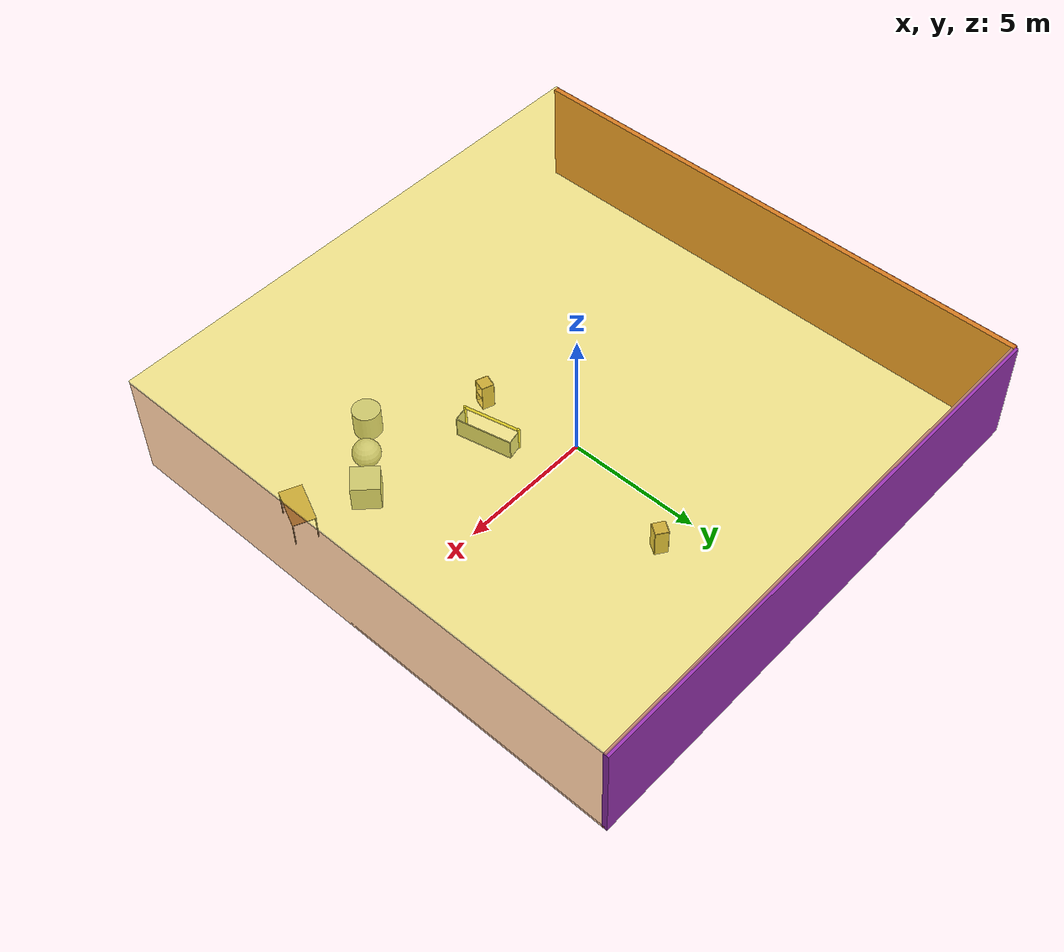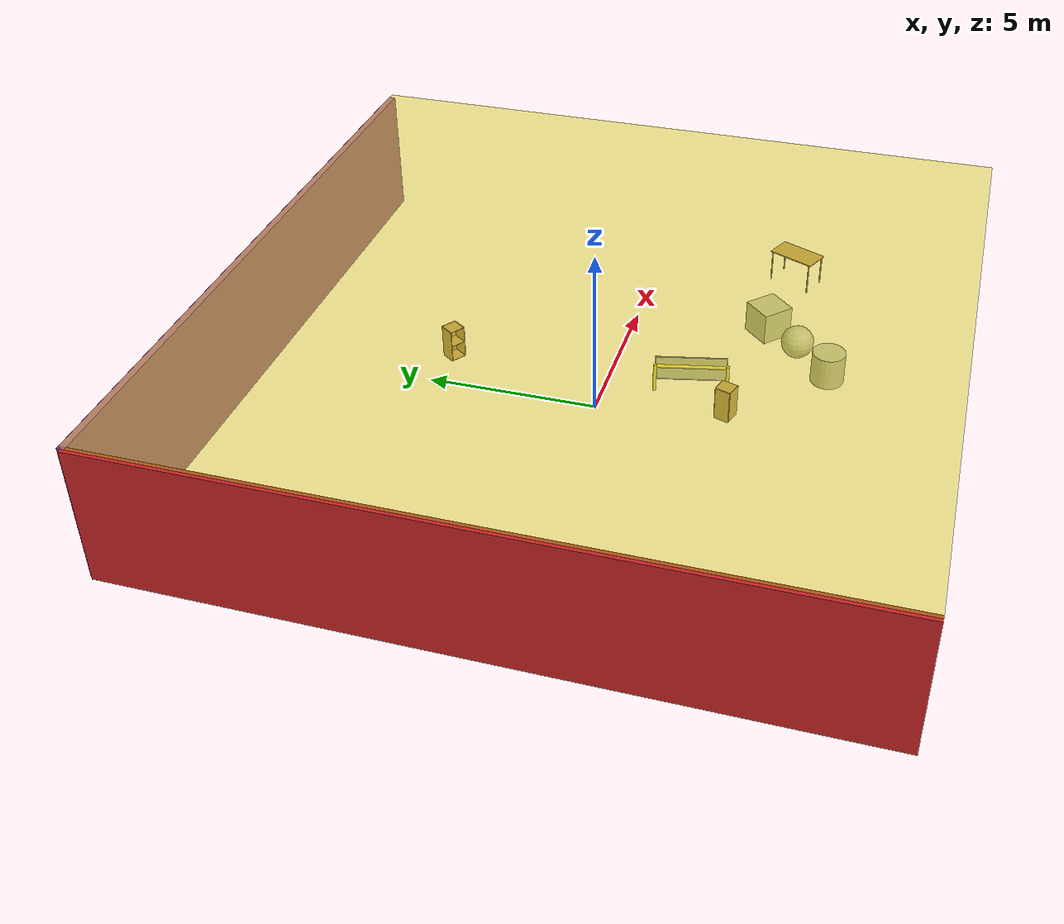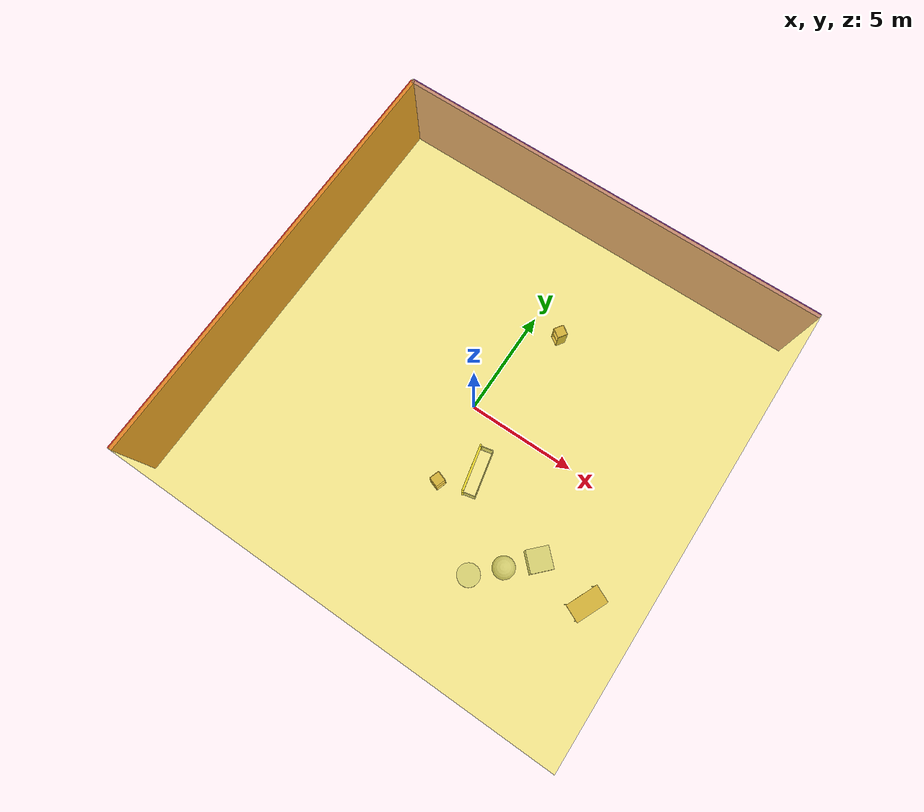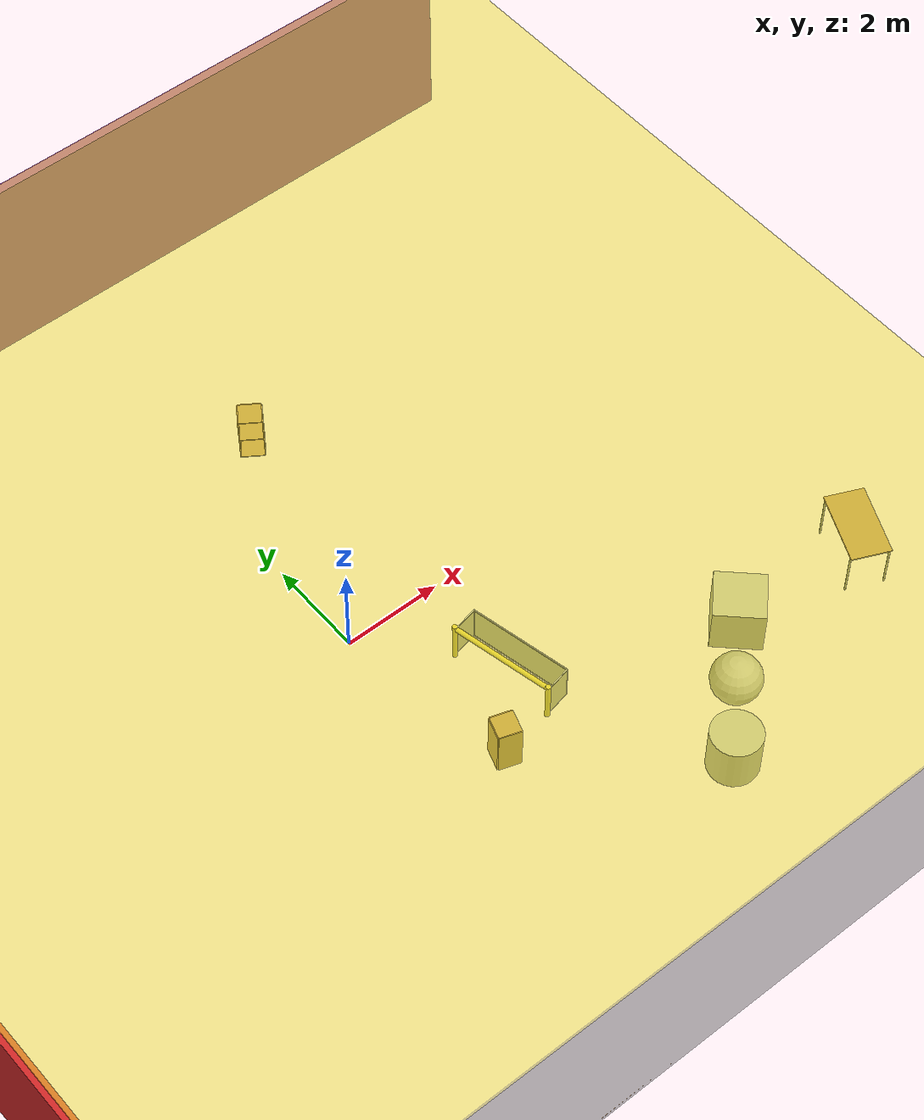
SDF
<sdf version="1.4">
 <world name="default">
  <physics type="ode">
   <max_step_size>0.001</max_step_size>
   <real_time_factor>1</real_time_factor>
   <real_time_update_rate>1000</real_time_update_rate>
   <gravity>0 0 -9.8</gravity>
  </physics>
  <scene><ambient>0.4 0.4 0.4 1</ambient><background>0.7 0.7 0.7 1</background><shadows>1</shadows></scene>
  <model name="Surrounding">
   <static>1</static>
   <link name="Ceiling">
    <collision name="Ceiling_Collision"><geometry><box><size>20 20 0.1</size></box></geometry></collision>
    <visual name="Ceiling_Visual">
     <geometry><box><size>20 20 0.1</size></box></geometry>
     <material>
      <script>
       <uri>file://media/materials/scripts/gazebo.material</uri>
       <name>Gazebo/YellowTransparent</name>
      </script>
     </material>
    </visual>
    <pose>0 0 4.05 0 0 0</pose>
   </link>
   <link name="Wall_South">
    <collision name="Wall_South_Collision">
     <geometry><box><size>20 0 4</size></box></geometry>
     <pose>0 0 2 0 -0 0</pose>
    </collision>
    <visual name="Wall_South_Visual">
     <pose>0 0 2 0 -0 0</pose>
     <geometry><box><size>20 0 4</size></box></geometry>
     <material>
      <script><uri>file://media/materials/scripts/gazebo.material</uri><name>Gazebo/GreyTransparent</name></script>
     </material>
    </visual>
    <velocity_decay><linear>0</linear><angular>0</angular></velocity_decay>
    <pose>0 -10 0 0 -0 0</pose>
   </link>
   <link name="Wall_East">
    <collision name="Wall_21_Collision">
     <geometry><box><size>20 0 4</size></box></geometry>
     <pose>0 0 2 0 -0 0</pose>
    </collision>
    <visual name="Wall_21_Visual">
     <pose>0 0 2 0 -0 0</pose>
     <geometry><box><size>20 0 4</size></box></geometry>
     <material>
      <script>
       <uri>file://media/materials/scripts/gazebo.material</uri>
       <name>Gazebo/OrangeTransparent</name>
      </script>
     </material>
    </visual>
    <velocity_decay><linear>0</linear><angular>0</angular></velocity_decay>
    <pose>10 0 0 0 -0 1.5708</pose>
   </link>
   <link name="Wall_North">
    <collision name="Wall_22_Collision">
     <geometry><box><size>20 0.2 4</size></box></geometry>
     <pose>0 0 2 0 -0 0</pose>
    </collision>
    <visual name="Wall_22_Visual">
     <pose>0 0 2 0 -0 0</pose>
     <geometry><box><size>20 0.2 4</size></box></geometry>
     <material>
      <script><uri>file://media/materials/scripts/gazebo.material</uri><name>Gazebo/Purple</name></script>
     </material>
    </visual>
    <velocity_decay><linear>0</linear><angular>0</angular></velocity_decay>
    <pose>0 10 0 0 -0 0</pose>
   </link>
   <link name="Wall_West">
    <collision name="Wall_23_Collision">
     <geometry><box><size>20 0.2 4</size></box></geometry>
     <pose>0 0 2 0 -0 0</pose>
    </collision>
    <visual name="Wall_23_Visual">
     <pose>0 0 2 0 -0 0</pose>
     <geometry><box><size>20 0.2 4</size></box></geometry>
     <material>
      <script><uri>file://media/materials/scripts/gazebo.material</uri><name>Gazebo/RedBright</name></script>
     </material>
    </visual>
    <velocity_decay><linear>0</linear><angular>0</angular></velocity_decay>
    <pose>-10 0 0 0 0 -1.5708</pose>
   </link>
   <link name="Ground_link">
    <collision name="collision">
     <pose>0 0 .05 0 -0 0</pose>
     <geometry><box><size>20 20 0.1</size></box></geometry>
    </collision>
    <visual name="visual">
     <pose>0 0 .05 0 -0 0</pose>
     <geometry><box><size>20 20 0.1</size></box></geometry>
     <material>
      <script>
       <uri>file://media/materials/scripts/gazebo.material</uri>
       <name>Gazebo/OrangeTransparent</name>
      </script>
     </material>
    </visual>
   </link>
   <static>1</static>
  </model>
  <spherical_coordinates>
   <surface_model>EARTH_WGS84</surface_model>
   <latitude_deg>0</latitude_deg>
   <longitude_deg>0</longitude_deg>
   <elevation>0</elevation>
   <heading_deg>0</heading_deg>
  </spherical_coordinates>
  <light name="lightball_0" type="diffuse">
   <diffuse>0.8 0.8 0.8 1</diffuse>
   <specular>0.2 0.2 0.2 1</specular>
   <attenuation>
    <range>100</range>
    <constant>0.7</constant>
    <linear>0.01</linear>
    <quadratic>0.001</quadratic>
   </attenuation>
   <direction>-0.5 0.1 -0.9</direction>
   <pose>-2.1593956478 -4.42748988873 3.1558070786 0 0 0</pose>
  </light>
  <light name="lightball_1" type="diffuse">
   <diffuse>0.8 0.8 0.8 1</diffuse>
   <specular>0.2 0.2 0.2 1</specular>
   <attenuation>
    <range>100</range>
    <constant>0.7</constant>
    <linear>0.01</linear>
    <quadratic>0.001</quadratic>
   </attenuation>
   <direction>-0.5 0.1 -0.9</direction>
   <pose>-4.32190502869 3.28649999555 2.85727175864 0 0 0</pose>
  </light>
  <light name="lightball_2" type="diffuse">
   <diffuse>0.8 0.8 0.8 1</diffuse>
   <specular>0.2 0.2 0.2 1</specular>
   <attenuation>
    <range>100</range>
    <constant>0.7</constant>
    <linear>0.01</linear>
    <quadratic>0.001</quadratic>
   </attenuation>
   <direction>-0.5 0.1 -0.9</direction>
   <pose>0.433232474177 3.58698467838 3.38714171016 0 0 0</pose>
  </light>
  <light name="lightball_3" type="diffuse">
   <diffuse>0.8 0.8 0.8 1</diffuse>
   <specular>0.2 0.2 0.2 1</specular>
   <attenuation>
    <range>100</range>
    <constant>0.7</constant>
    <linear>0.01</linear>
    <quadratic>0.001</quadratic>
   </attenuation>
   <direction>-0.5 0.1 -0.9</direction>
   <pose>-7.03822362578 -1.326163554 2.56870774642 0 0 0</pose>
  </light>
  <light name="lightball_4" type="diffuse">
   <diffuse>0.8 0.8 0.8 1</diffuse>
   <specular>0.2 0.2 0.2 1</specular>
   <attenuation>
    <range>100</range>
    <constant>0.7</constant>
    <linear>0.01</linear>
    <quadratic>0.001</quadratic>
   </attenuation>
   <direction>-0.5 0.1 -0.9</direction>
   <pose>-2.07401543954 7.80562594802 0.709831749177 0 0 0</pose>
  </light>
  <light name="lightball_5" type="diffuse">
   <diffuse>0.8 0.8 0.8 1</diffuse>
   <specular>0.2 0.2 0.2 1</specular>
   <attenuation>
    <range>100</range>
    <constant>0.7</constant>
    <linear>0.01</linear>
    <quadratic>0.001</quadratic>
   </attenuation>
   <direction>-0.5 0.1 -0.9</direction>
   <pose>5.27885256875 -7.70724882031 3.74559000092 0 0 0</pose>
  </light>
  <light name="lightball_6" type="diffuse">
   <diffuse>0.8 0.8 0.8 1</diffuse>
   <specular>0.2 0.2 0.2 1</specular>
   <attenuation>
    <range>100</range>
    <constant>0.7</constant>
    <linear>0.01</linear>
    <quadratic>0.001</quadratic>
   </attenuation>
   <direction>-0.5 0.1 -0.9</direction>
   <pose>1.02689132988 1.18546877237 2.52667143064 0 0 0</pose>
  </light>
  <light name="lightball_7" type="diffuse">
   <diffuse>0.8 0.8 0.8 1</diffuse>
   <specular>0.2 0.2 0.2 1</specular>
   <attenuation>
    <range>100</range>
    <constant>0.7</constant>
    <linear>0.01</linear>
    <quadratic>0.001</quadratic>
   </attenuation>
   <direction>-0.5 0.1 -0.9</direction>
   <pose>-7.82759704017 -1.53887437942 1.62178742576 0 0 0</pose>
  </light>
  <include><uri>model://cabinet</uri><pose>0.619007657975 -3.65807117211 0 0 0 2.81540660178</pose></include>
  <include>
   <uri>model://robocup_3Dsim_goal</uri>
   <pose>1.53131720498 -2.45372103084 0 0 0 0.213927239133</pose>
  </include>
  <include><uri>model://cabinet</uri><pose>1.39525074979 4.77640997768 0 0 0 0.970300874709</pose></include>
  <include>
   <uri>model://textured_shapes</uri>
   <pose>4.90260399796 -5.06115619055 0 0 0 2.37159607796</pose>
  </include>
  <include><uri>model://table</uri><pose>8.41992531982 -4.42655232076 0 0 0 1.14773818264</pose></include>
 </world>
</sdf>

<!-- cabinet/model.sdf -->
<sdf version="1.5">
  <model name="cabinet">
    <static>true</static>
    <link name="cabinet_bottom_plate">
      <inertial>
        <pose>0 0 -1 0 0 0</pose>
        <inertia>
          <ixx>2.050000</ixx>
          <ixy>0</ixy>
          <ixz>0</ixz>
          <iyy>2.050000</iyy>
          <iyz>0</iyz>
          <izz>2.050000</izz>
        </inertia>
        <mass>25.000000</mass>
      </inertial>
      <collision name="cabinet_bottom_plate_geom">
        <pose>0 0 0.010000 0 0 0</pose>
        <geometry>
          <box>
            <size>0.450000 0.450000 0.020000</size>
          </box>
        </geometry>
      </collision>
      <visual name="cabinet_bottom_plate_geom_visual">
        <pose>0 0 0.010000 0 0 0</pose>
        <geometry>
          <box>
            <size>0.450000 0.450000 0.020000</size>
          </box>
        </geometry>
        <material>
          <script>
            <uri>model://media/materials/scripts/gazebo.material</uri>
            <name>Gazebo/Wood</name>
          </script>
        </material>
      </visual>
      <collision name="cabinet_bottom_plate_geom_cabinet_back_plate">
        <pose>0.235000 0 0.510000 0 0 0</pose>
        <geometry>
          <box>
            <size>0.020000 0.450000 1.020000</size>
          </box>
        </geometry>
      </collision>
      <visual name="cabinet_bottom_plate_geom_cabinet_back_plate_visual">
        <pose>0.235000 0 0.510000 0 0 0</pose>
        <geometry>
          <box>
            <size>0.020000 0.450000 1.020000</size>
          </box>
        </geometry>
        <material>
          <script>
            <uri>model://media/materials/scripts/gazebo.material</uri>
            <name>Gazebo/Wood</name>
          </script>
        </material>
      </visual>
      <collision name="cabinet_bottom_plate_geom_cabinet_left_plate">
        <pose>0 0.235000 0.510000 0 0 0</pose>
        <geometry>
          <box>
            <size>0.450000 0.020000 1.020000</size>
          </box>
        </geometry>
      </collision>
      <visual name="cabinet_bottom_plate_geom_cabinet_left_plate_visual">
        <pose>0 0.235000 0.510000 0 0 0</pose>
        <geometry>
          <box>
            <size>0.450000 0.020000 1.020000</size>
          </box>
        </geometry>
        <material>
          <script>
            <uri>model://media/materials/scripts/gazebo.material</uri>
            <name>Gazebo/Wood</name>
          </script>
        </material>
      </visual>
      <collision name="cabinet_bottom_plate_geom_cabinet_middle_plate">
        <pose>0 0 0.510000 0 0 0</pose>
        <geometry>
          <box>
            <size>0.450000 0.450000 0.020000</size>
          </box>
        </geometry>
      </collision>
      <visual name="cabinet_bottom_plate_geom_cabinet_middle_plate_visual">
        <pose>0 0 0.510000 0 0 0</pose>
        <geometry>
          <box>
            <size>0.450000 0.450000 0.020000</size>
          </box>
        </geometry>
        <material>
          <script>
            <uri>model://media/materials/scripts/gazebo.material</uri>
            <name>Gazebo/Wood</name>
          </script>
        </material>
      </visual>
      <collision name="cabinet_bottom_plate_geom_cabinet_right_plate">
        <pose>0 -0.235000 0.510000 0 0 0</pose>
        <geometry>
          <box>
            <size>0.450000 0.020000 1.020000</size>
          </box>
        </geometry>
      </collision>
      <visual name="cabinet_bottom_plate_geom_cabinet_right_plate_visual">
        <pose>0 -0.235000 0.510000 0 0 0</pose>
        <geometry>
          <box>
            <size>0.450000 0.020000 1.020000</size>
          </box>
        </geometry>
        <material>
          <script>
            <uri>model://media/materials/scripts/gazebo.material</uri>
            <name>Gazebo/Wood</name>
          </script>
        </material>
      </visual>
      <collision name="cabinet_bottom_plate_geom_cabinet_top_plate">
        <pose>0 0 1.010000 0 0 0</pose>
        <geometry>
          <box>
            <size>0.450000 0.450000 0.020000</size>
          </box>
        </geometry>
      </collision>
      <visual name="cabinet_bottom_plate_geom_cabinet_top_plate_visual">
        <pose>0 0 1.010000 0 0 0</pose>
        <geometry>
          <box>
            <size>0.450000 0.450000 0.020000</size>
          </box>
        </geometry>
        <material>
          <script>
            <uri>model://media/materials/scripts/gazebo.material</uri>
            <name>Gazebo/Wood</name>
          </script>
        </material>
      </visual>
    </link>
  </model>
</sdf>

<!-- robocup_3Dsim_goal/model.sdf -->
<sdf version="1.5">
  <model name="robocup_3d_goal">
    <static>true</static>
    <link name="left_post">
      <pose>0 1.05 0.45 0 0 0</pose>
      <collision name="collision">
        <geometry>
          <cylinder>
            <radius>0.05</radius>
            <length>0.9</length>
          </cylinder>
        </geometry>
      </collision>
      <visual name="visual">
        <geometry>
          <cylinder>
            <radius>0.05</radius>
            <length>0.9</length>
          </cylinder>
        </geometry>
        <material>
          <script>
            <uri>file://media/materials/scripts/gazebo.material</uri>
            <name>Gazebo/ZincYellow</name>
          </script>
        </material>
      </visual>
    </link>
    <link name="left_support_horiz_lower">
      <pose>0.30 1.05 0.01 0 0 0</pose>
      <collision name="collision">
        <geometry>
          <box>
            <size>0.50 0.02 0.02</size>
          </box>
        </geometry>
      </collision>
      <visual name="visual">
        <geometry>
          <box>
            <size>0.50 0.02 0.02</size>
          </box>
        </geometry>
        <material>
          <script>
            <uri>file://media/materials/scripts/gazebo.material</uri>
            <name>Gazebo/White</name>
          </script>
        </material>
      </visual>
    </link>
    <link name="left_support_horiz_upper">
      <pose>0.30 1.05 0.79 0 0 0</pose>
      <collision name="collision">
        <geometry>
          <box>
            <size>0.50 0.02 0.02</size>
          </box>
        </geometry>
      </collision>
      <visual name="visual">
        <geometry>
          <box>
            <size>0.50 0.02 0.02</size>
          </box>
        </geometry>
        <material>
          <script>
            <uri>file://media/materials/scripts/gazebo.material</uri>
            <name>Gazebo/White</name>
          </script>
        </material>
      </visual>
    </link>
    <link name="left_support_vertical">
      <pose>0.56 1.05 0.4 0 1.5708 0</pose>
      <collision name="collision">
        <geometry>
          <box>
            <size>0.80 0.02 0.02</size>
          </box>
        </geometry>
      </collision>
      <visual name="visual">
        <geometry>
          <box>
            <size>0.80 0.02 0.02</size>
          </box>
        </geometry>
        <material>
          <script>
            <uri>file://media/materials/scripts/gazebo.material</uri>
            <name>Gazebo/White</name>
          </script>
        </material>
      </visual>
    </link>
    <link name="right_support_horiz_lower">
      <pose>0.30 -1.05 0.01 0 0 0</pose>
      <collision name="collision">
        <geometry>
          <box>
            <size>0.50 0.02 0.02</size>
          </box>
        </geometry>
      </collision>
      <visual name="visual">
        <geometry>
          <box>
            <size>0.50 0.02 0.02</size>
          </box>
        </geometry>
        <material>
          <script>
            <uri>file://media/materials/scripts/gazebo.material</uri>
            <name>Gazebo/White</name>
          </script>
        </material>
      </visual>
    </link>
    <link name="right_support_horiz_upper">
      <pose>0.30 -1.05 0.79 0 0 0</pose>
      <collision name="collision">
        <geometry>
          <box>
            <size>0.50 0.02 0.02</size>
          </box>
        </geometry>
      </collision>
      <visual name="visual">
        <geometry>
          <box>
            <size>0.50 0.02 0.02</size>
          </box>
        </geometry>
        <material>
          <script>
            <uri>file://media/materials/scripts/gazebo.material</uri>
            <name>Gazebo/White</name>
          </script>
        </material>
      </visual>
    </link>
    <link name="right_support_vertical">
      <pose>0.56 -1.05 0.4 0 1.5708 0</pose>
      <collision name="collision">
        <geometry>
          <box>
            <size>0.80 0.02 0.02</size>
          </box>
        </geometry>
      </collision>
      <visual name="visual">
        <geometry>
          <box>
            <size>0.80 0.02 0.02</size>
          </box>
        </geometry>
        <material>
          <script>
            <uri>file://media/materials/scripts/gazebo.material</uri>
            <name>Gazebo/White</name>
          </script>
        </material>
      </visual>
    </link>
    <link name="center_support_horiz_lower">
      <pose>0.56 0 0.01 0 1.5708 0</pose>
      <collision name="collision">
        <geometry>
          <box>
            <size>0.02 2.08 0.02</size>
          </box>
        </geometry>
      </collision>
      <visual name="visual">
        <geometry>
          <box>
            <size>0.02 2.08 0.02</size>
          </box>
        </geometry>
        <material>
          <script>
            <uri>file://media/materials/scripts/gazebo.material</uri>
            <name>Gazebo/White</name>
          </script>
        </material>
      </visual>
    </link>
    <link name="center_support_horiz_upper">
      <pose>0.56 0 0.79 0 1.5708 0</pose>
      <collision name="collision">
        <geometry>
          <box>
            <size>0.02 2.08 0.02</size>
          </box>
        </geometry>
      </collision>
      <visual name="visual">
        <geometry>
          <box>
            <size>0.02 2.08 0.02</size>
          </box>
        </geometry>
        <material>
          <script>
            <uri>file://media/materials/scripts/gazebo.material</uri>
            <name>Gazebo/White</name>
          </script>
        </material>
      </visual>
    </link>
    <link name="right_post">
      <pose>0 -1.05 0.45 0 0 0</pose>
      <collision name="collision">
        <geometry>
          <cylinder>
            <radius>0.05</radius>
            <length>0.9</length>
          </cylinder>
        </geometry>
      </collision>
      <visual name="visual">
        <geometry>
          <cylinder>
            <radius>0.05</radius>
            <length>0.9</length>
          </cylinder>
        </geometry>
        <material>
          <script>
            <uri>file://media/materials/scripts/gazebo.material</uri>
            <name>Gazebo/ZincYellow</name>
          </script>
        </material>
      </visual>
    </link>
    <link name="crossbar">
      <pose>0 0 0.85 1.57 1.57 0</pose>
      <collision name="collision">
        <geometry>
          <cylinder>
            <radius>0.05</radius>
            <length>2.0</length>
          </cylinder>
        </geometry>
      </collision>
      <visual name="visual">
        <geometry>
          <cylinder>
            <radius>0.05</radius>
            <length>2.0</length>
          </cylinder>
        </geometry>
        <material>
          <script>
            <uri>file://media/materials/scripts/gazebo.material</uri>
            <name>Gazebo/ZincYellow</name>
          </script>
        </material>
      </visual>
    </link>
    <link name="center_net">
      <pose>0.56 0 0.40 0 0 0</pose>
      <collision name="collision">
        <geometry>
          <box>
            <size>0.01 2.1 0.80</size>
          </box>
        </geometry>
      </collision>
      <visual name="visual">
        <geometry>
          <box>
            <size>0.01 2.1 0.80</size>
          </box>
        </geometry>
        <material>
          <script>
            <uri>model://../model_source/models/robocup09_spl_field/materials/scripts/</uri>
            <uri>model://../model_source/models/robocup09_spl_field/materials/textures/</uri>
            <name>RoboCup/Net</name>
          </script>
        </material>
      </visual>
    </link>
    <link name="left_net">
      <pose>0.30 1.05 0.40 0 0 0</pose>
      <collision name="collision">
        <geometry>
          <box>
            <size>0.50 0.01 0.76</size>
          </box>
        </geometry>
      </collision>
      <visual name="visual">
        <geometry>
          <box>
            <size>0.50 0.01 0.76</size>
          </box>
        </geometry>
        <material>
          <script>
            <uri>model://../model_source/models/robocup09_spl_field/materials/scripts/</uri>
            <uri>model://../model_source/models/robocup09_spl_field/materials/textures/</uri>
            <name>RoboCup/Net</name>
          </script>
        </material>
      </visual>
    </link>
    <link name="right_net">
      <pose>0.30 -1.05 0.40 0 0 0</pose>
      <collision name="collision">
        <geometry>
          <box>
            <size>0.50 0.01 0.76</size>
          </box>
        </geometry>
      </collision>
      <visual name="visual">
        <geometry>
          <box>
            <size>0.50 0.01 0.76</size>
          </box>
        </geometry>
        <material>
          <script>
            <uri>model://../model_source/models/robocup09_spl_field/materials/scripts/</uri>
            <uri>model://../model_source/models/robocup09_spl_field/materials/textures/</uri>
            <name>RoboCup/Net</name>
          </script>
        </material>
      </visual>
    </link>
  </model>
</sdf>

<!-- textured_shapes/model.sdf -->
<sdf version="1.6">
  <model name="textured_shapes">
    <pose>0 0 0.5 0 0 0</pose>
    <link name="box">
      <pose>0 -1.5 0 0 0 0</pose>
      <collision name="collision">
        <geometry>
          <box>
            <size>1 1 1</size>
          </box>
        </geometry>
      </collision>
      <visual name="visual">
        <geometry>
          <box>
            <size>1 1 1</size>
          </box>
        </geometry>
        <material>
          <script>
            <uri>model://../model_source/models/textured_shapes/materials/scripts</uri>
            <uri>model://../model_source/models/textured_shapes/materials/textures</uri>
            <name>TexturedShape/Squares</name>
          </script>
        </material>
      </visual>
    </link>
    <link name="sphere">
      <collision name="collision">
        <geometry>
          <sphere>
            <radius>0.5</radius>
          </sphere>
        </geometry>
      </collision>
      <visual name="visual">
        <geometry>
          <sphere>
            <radius>0.5</radius>
          </sphere>
        </geometry>
        <material>
          <script>
            <uri>model://../model_source/models/textured_shapes/materials/scripts</uri>
            <uri>model://../model_source/models/textured_shapes/materials/textures</uri>
            <name>TexturedShape/Squares</name>
          </script>
        </material>
      </visual>
    </link>
    <link name="cylinder">
      <pose>0 1.5 0 0 0 0</pose>
      <collision name="collision">
        <geometry>
          <cylinder>
            <radius>0.5</radius>
            <length>1</length>
          </cylinder>
        </geometry>
      </collision>
      <visual name="visual">
        <geometry>
          <cylinder>
            <radius>0.5</radius>
            <length>1</length>
          </cylinder>
        </geometry>
        <material>
          <script>
            <uri>model://../model_source/models/textured_shapes/materials/scripts</uri>
            <uri>model://../model_source/models/textured_shapes/materials/textures</uri>
            <name>TexturedShape/Squares</name>
          </script>
        </material>
      </visual>
    </link>
  </model>
</sdf>

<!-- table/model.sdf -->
<sdf version="1.5">
  <model name="table">
    <static>true</static>
    <link name="link">
      <collision name="surface">
        <pose>0 0 1.0 0 0 0</pose>
        <geometry>
          <box>
            <size>1.5 0.8 0.03</size>
          </box>
        </geometry>
        <surface>
          <friction>
            <ode>
              <mu>0.6</mu>
              <mu2>0.6</mu2>
            </ode>
          </friction>
        </surface>
      </collision>
      <visual name="visual1">
        <pose>0 0 1.0 0 0 0</pose>
        <geometry>
          <box>
            <size>1.5 0.8 0.03</size>
          </box>
        </geometry>
        <material>
          <script>
            <uri>model://media/materials/scripts/gazebo.material</uri>
            <name>Gazebo/Wood</name>
          </script>
        </material>
      </visual>
      <collision name="front_left_leg">
        <pose>0.68 0.38 0.5 0 0 0</pose>
        <geometry>
          <cylinder>
            <radius>0.02</radius>
            <length>1.0</length>
          </cylinder>
        </geometry>
      </collision>
      <visual name="front_left_leg">
        <pose>0.68 0.38 0.5 0 0 0</pose>
        <geometry>
          <cylinder>
            <radius>0.02</radius>
            <length>1.0</length>
          </cylinder>
        </geometry>
        <material>
          <script>
            <uri>model://media/materials/scripts/gazebo.material</uri>
            <name>Gazebo/Grey</name>
          </script>
        </material>
      </visual>
      <collision name="front_right_leg">
        <pose>0.68 -0.38 0.5 0 0 0</pose>
        <geometry>
          <cylinder>
            <radius>0.02</radius>
            <length>1.0</length>
          </cylinder>
        </geometry>
      </collision>
      <visual name="front_right_leg">
        <pose>0.68 -0.38 0.5 0 0 0</pose>
        <geometry>
          <cylinder>
            <radius>0.02</radius>
            <length>1.0</length>
          </cylinder>
        </geometry>
        <material>
          <script>
            <uri>model://media/materials/scripts/gazebo.material</uri>
            <name>Gazebo/Grey</name>
          </script>
        </material>
      </visual>
      <collision name="back_right_leg">
        <pose>-0.68 -0.38 0.5 0 0 0</pose>
        <geometry>
          <cylinder>
            <radius>0.02</radius>
            <length>1.0</length>
          </cylinder>
        </geometry>
      </collision>
      <visual name="back_right_leg">
        <pose>-0.68 -0.38 0.5 0 0 0</pose>
        <geometry>
          <cylinder>
            <radius>0.02</radius>
            <length>1.0</length>
          </cylinder>
        </geometry>
        <material>
          <script>
            <uri>model://media/materials/scripts/gazebo.material</uri>
            <name>Gazebo/Grey</name>
          </script>
        </material>
      </visual>
      <collision name="back_left_leg">
        <pose>-0.68 0.38 0.5 0 0 0</pose>
        <geometry>
          <cylinder>
            <radius>0.02</radius>
            <length>1.0</length>
          </cylinder>
        </geometry>
      </collision>
      <visual name="back_left_leg">
        <pose>-0.68 0.38 0.5 0 0 0</pose>
        <geometry>
          <cylinder>
            <radius>0.02</radius>
            <length>1.0</length>
          </cylinder>
        </geometry>
        <material>
          <script>
            <uri>model://media/materials/scripts/gazebo.material</uri>
            <name>Gazebo/Grey</name>
          </script>
        </material>
      </visual>
    </link>
  </model>
</sdf>
